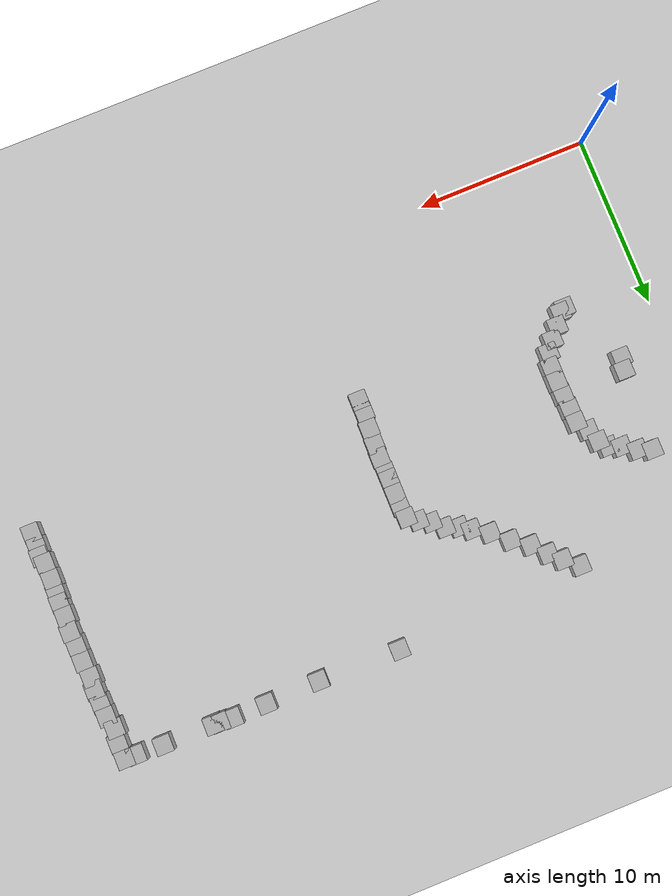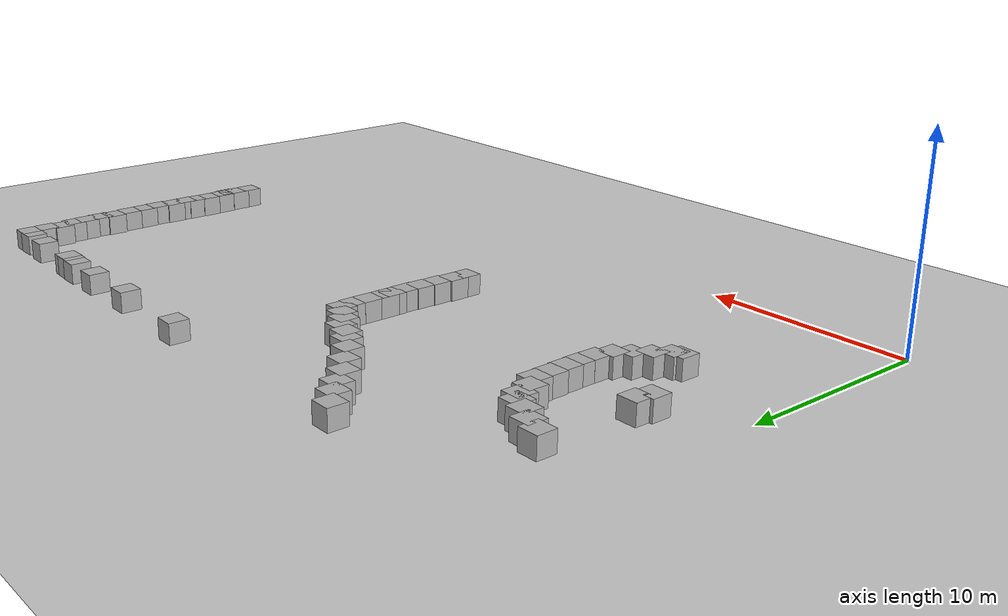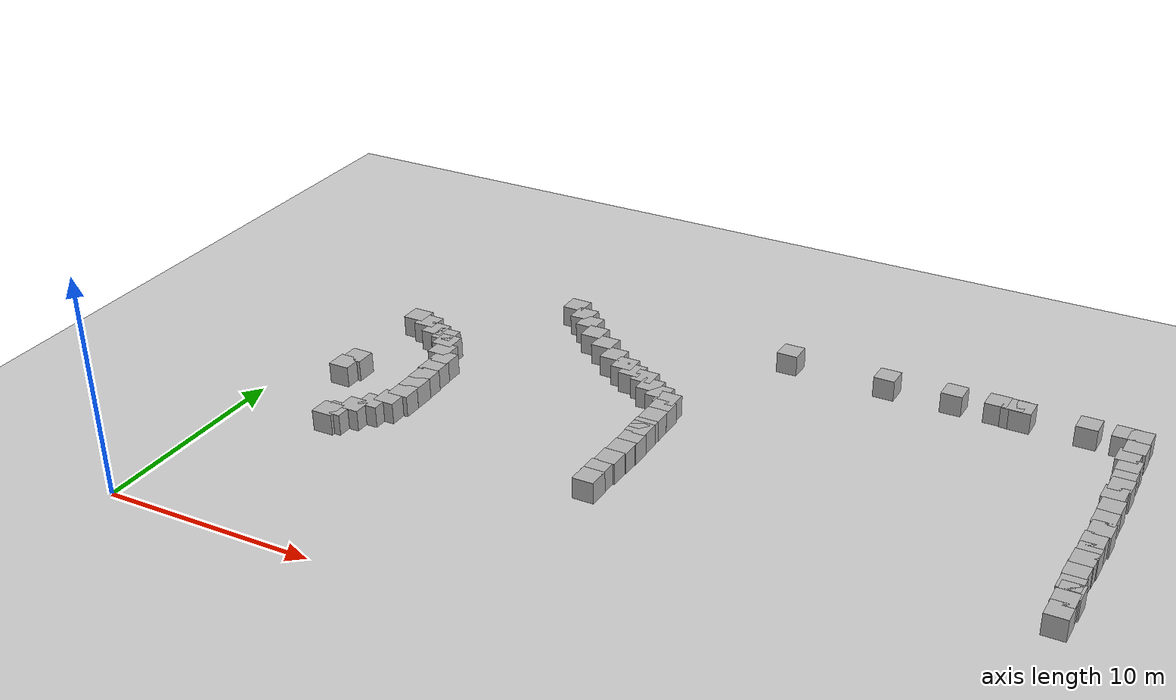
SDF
<sdf version="1.10">
 <world name="empty">
  <model name="ground_plane">
   <static>true</static>
   <link name="link">
    <collision name="collision">
     <geometry><plane><normal>0 0 1</normal><size>100 100</size></plane></geometry>
    </collision>
    <visual name="visual">
     <geometry><plane><normal>0 0 1</normal><size>100 100</size></plane></geometry>
     <material>
      <ambient>0.800000012 0.800000012 0.800000012 1</ambient>
      <diffuse>0.800000012 0.800000012 0.800000012 1</diffuse>
      <specular>0.800000012 0.800000012 0.800000012 1</specular>
     </material>
    </visual>
    <inertial>
     <mass>1</mass>
     <inertia><ixx>1</ixx><ixy>0</ixy><ixz>0</ixz><iyy>1</iyy><iyz>0</iyz><izz>1</izz></inertia>
    </inertial>
   </link>
  </model>
  <model name="box_7_46">
   <pose>3.0677320208364174 13.160288461322423 0.5 0 0 0</pose>
   <link name="box_link">
    <inertial>
     <inertia><ixx>0.16666</ixx><ixy>0</ixy><ixz>0</ixz><iyy>0.16666</iyy><iyz>0</iyz><izz>0.16666</izz></inertia>
     <mass>1</mass>
    </inertial>
    <collision name="box_collision"><geometry><box><size>1 1 1</size></box></geometry></collision>
    <visual name="box_visual">
     <geometry><box><size>1 1 1</size></box></geometry>
     <material>
      <ambient>0.300000012 0.300000012 0.300000012 1</ambient>
      <diffuse>0.699999988 0.699999988 0.699999988 1</diffuse>
      <specular>1 1 1 1</specular>
     </material>
    </visual>
   </link>
   <static>false</static>
  </model>
  <model name="box_7_47">
   <pose>2.9097645457033714 12.430221554725588 0.5 0 0 0</pose>
   <link name="box_link">
    <inertial>
     <inertia><ixx>0.16666</ixx><ixy>0</ixy><ixz>0</ixz><iyy>0.16666</iyy><iyz>0</iyz><izz>0.16666</izz></inertia>
     <mass>1</mass>
    </inertial>
    <collision name="box_collision"><geometry><box><size>1 1 1</size></box></geometry></collision>
    <visual name="box_visual">
     <geometry><box><size>1 1 1</size></box></geometry>
     <material>
      <ambient>0.300000012 0.300000012 0.300000012 1</ambient>
      <diffuse>0.699999988 0.699999988 0.699999988 1</diffuse>
      <specular>1 1 1 1</specular>
     </material>
    </visual>
   </link>
   <static>false</static>
  </model>
  <model name="box_7_78">
   <pose>3.3370179399446265 17.899108722069567 0.5 0 0 0</pose>
   <link name="box_link">
    <inertial>
     <inertia><ixx>0.16666</ixx><ixy>0</ixy><ixz>0</ixz><iyy>0.16666</iyy><iyz>0</iyz><izz>0.16666</izz></inertia>
     <mass>1</mass>
    </inertial>
    <collision name="box_collision"><geometry><box><size>1 1 1</size></box></geometry></collision>
    <visual name="box_visual">
     <geometry><box><size>1 1 1</size></box></geometry>
     <material>
      <ambient>0.300000012 0.300000012 0.300000012 1</ambient>
      <diffuse>0.699999988 0.699999988 0.699999988 1</diffuse>
      <specular>1 1 1 1</specular>
     </material>
    </visual>
   </link>
   <static>false</static>
  </model>
  <model name="box_7_79">
   <pose>4.1255406590852468 17.592971812238531 0.5 0 0 0</pose>
   <link name="box_link">
    <inertial>
     <inertia><ixx>0.16666</ixx><ixy>0</ixy><ixz>0</ixz><iyy>0.16666</iyy><iyz>0</iyz><izz>0.16666</izz></inertia>
     <mass>1</mass>
    </inertial>
    <collision name="box_collision"><geometry><box><size>1 1 1</size></box></geometry></collision>
    <visual name="box_visual">
     <geometry><box><size>1 1 1</size></box></geometry>
     <material>
      <ambient>0.300000012 0.300000012 0.300000012 1</ambient>
      <diffuse>0.699999988 0.699999988 0.699999988 1</diffuse>
      <specular>1 1 1 1</specular>
     </material>
    </visual>
   </link>
   <static>false</static>
  </model>
  <model name="box_7_80">
   <pose>4.8901070968237415 17.086062362435086 0.5 0 0 0</pose>
   <link name="box_link">
    <inertial>
     <inertia><ixx>0.16666</ixx><ixy>0</ixy><ixz>0</ixz><iyy>0.16666</iyy><iyz>0</iyz><izz>0.16666</izz></inertia>
     <mass>1</mass>
    </inertial>
    <collision name="box_collision"><geometry><box><size>1 1 1</size></box></geometry></collision>
    <visual name="box_visual">
     <geometry><box><size>1 1 1</size></box></geometry>
     <material>
      <ambient>0.300000012 0.300000012 0.300000012 1</ambient>
      <diffuse>0.699999988 0.699999988 0.699999988 1</diffuse>
      <specular>1 1 1 1</specular>
     </material>
    </visual>
   </link>
   <static>false</static>
  </model>
  <model name="box_7_81">
   <pose>5.5930437818151875 16.806907180822982 0.5 0 0 0</pose>
   <link name="box_link">
    <inertial>
     <inertia><ixx>0.16666</ixx><ixy>0</ixy><ixz>0</ixz><iyy>0.16666</iyy><iyz>0</iyz><izz>0.16666</izz></inertia>
     <mass>1</mass>
    </inertial>
    <collision name="box_collision"><geometry><box><size>1 1 1</size></box></geometry></collision>
    <visual name="box_visual">
     <geometry><box><size>1 1 1</size></box></geometry>
     <material>
      <ambient>0.300000012 0.300000012 0.300000012 1</ambient>
      <diffuse>0.699999988 0.699999988 0.699999988 1</diffuse>
      <specular>1 1 1 1</specular>
     </material>
    </visual>
   </link>
   <static>false</static>
  </model>
  <model name="box_7_82">
   <pose>5.9852228596454342 16.321524397538653 0.5 0 0 0</pose>
   <link name="box_link">
    <inertial>
     <inertia><ixx>0.16666</ixx><ixy>0</ixy><ixz>0</ixz><iyy>0.16666</iyy><iyz>0</iyz><izz>0.16666</izz></inertia>
     <mass>1</mass>
    </inertial>
    <collision name="box_collision"><geometry><box><size>1 1 1</size></box></geometry></collision>
    <visual name="box_visual">
     <geometry><box><size>1 1 1</size></box></geometry>
     <material>
      <ambient>0.300000012 0.300000012 0.300000012 1</ambient>
      <diffuse>0.699999988 0.699999988 0.699999988 1</diffuse>
      <specular>1 1 1 1</specular>
     </material>
    </visual>
   </link>
   <static>false</static>
  </model>
  <model name="box_7_83">
   <pose>6.2708436942567625 15.520516913768013 0.5 0 0 0</pose>
   <link name="box_link">
    <inertial>
     <inertia><ixx>0.16666</ixx><ixy>0</ixy><ixz>0</ixz><iyy>0.16666</iyy><iyz>0</iyz><izz>0.16666</izz></inertia>
     <mass>1</mass>
    </inertial>
    <collision name="box_collision"><geometry><box><size>1 1 1</size></box></geometry></collision>
    <visual name="box_visual">
     <geometry><box><size>1 1 1</size></box></geometry>
     <material>
      <ambient>0.300000012 0.300000012 0.300000012 1</ambient>
      <diffuse>0.699999988 0.699999988 0.699999988 1</diffuse>
      <specular>1 1 1 1</specular>
     </material>
    </visual>
   </link>
   <static>false</static>
  </model>
  <model name="box_7_84">
   <pose>6.728550969445779 14.859442429251848 0.5 0 0 0</pose>
   <link name="box_link">
    <inertial>
     <inertia><ixx>0.16666</ixx><ixy>0</ixy><ixz>0</ixz><iyy>0.16666</iyy><iyz>0</iyz><izz>0.16666</izz></inertia>
     <mass>1</mass>
    </inertial>
    <collision name="box_collision"><geometry><box><size>1 1 1</size></box></geometry></collision>
    <visual name="box_visual">
     <geometry><box><size>1 1 1</size></box></geometry>
     <material>
      <ambient>0.300000012 0.300000012 0.300000012 1</ambient>
      <diffuse>0.699999988 0.699999988 0.699999988 1</diffuse>
      <specular>1 1 1 1</specular>
     </material>
    </visual>
   </link>
   <static>false</static>
  </model>
  <model name="box_7_85">
   <pose>6.7566246475811251 13.987712866597468 0.5 0 0 0</pose>
   <link name="box_link">
    <inertial>
     <inertia><ixx>0.16666</ixx><ixy>0</ixy><ixz>0</ixz><iyy>0.16666</iyy><iyz>0</iyz><izz>0.16666</izz></inertia>
     <mass>1</mass>
    </inertial>
    <collision name="box_collision"><geometry><box><size>1 1 1</size></box></geometry></collision>
    <visual name="box_visual">
     <geometry><box><size>1 1 1</size></box></geometry>
     <material>
      <ambient>0.300000012 0.300000012 0.300000012 1</ambient>
      <diffuse>0.699999988 0.699999988 0.699999988 1</diffuse>
      <specular>1 1 1 1</specular>
     </material>
    </visual>
   </link>
   <static>false</static>
  </model>
  <model name="box_7_86">
   <pose>6.8127944043312958 13.116238845011692 0.5 0 0 0</pose>
   <link name="box_link">
    <inertial>
     <inertia><ixx>0.16666</ixx><ixy>0</ixy><ixz>0</ixz><iyy>0.16666</iyy><iyz>0</iyz><izz>0.16666</izz></inertia>
     <mass>1</mass>
    </inertial>
    <collision name="box_collision"><geometry><box><size>1 1 1</size></box></geometry></collision>
    <visual name="box_visual">
     <geometry><box><size>1 1 1</size></box></geometry>
     <material>
      <ambient>0.300000012 0.300000012 0.300000012 1</ambient>
      <diffuse>0.699999988 0.699999988 0.699999988 1</diffuse>
      <specular>1 1 1 1</specular>
     </material>
    </visual>
   </link>
   <static>false</static>
  </model>
  <model name="box_7_87">
   <pose>6.8409218960835698 12.295411732181719 0.5 0 0 0</pose>
   <link name="box_link">
    <inertial>
     <inertia><ixx>0.16666</ixx><ixy>0</ixy><ixz>0</ixz><iyy>0.16666</iyy><iyz>0</iyz><izz>0.16666</izz></inertia>
     <mass>1</mass>
    </inertial>
    <collision name="box_collision"><geometry><box><size>1 1 1</size></box></geometry></collision>
    <visual name="box_visual">
     <geometry><box><size>1 1 1</size></box></geometry>
     <material>
      <ambient>0.300000012 0.300000012 0.300000012 1</ambient>
      <diffuse>0.699999988 0.699999988 0.699999988 1</diffuse>
      <specular>1 1 1 1</specular>
     </material>
    </visual>
   </link>
   <static>false</static>
  </model>
  <model name="box_7_88">
   <pose>6.8384007547116159 11.441760595426191 0.5 0 0 0</pose>
   <link name="box_link">
    <inertial>
     <inertia><ixx>0.16666</ixx><ixy>0</ixy><ixz>0</ixz><iyy>0.16666</iyy><iyz>0</iyz><izz>0.16666</izz></inertia>
     <mass>1</mass>
    </inertial>
    <collision name="box_collision"><geometry><box><size>1 1 1</size></box></geometry></collision>
    <visual name="box_visual">
     <geometry><box><size>1 1 1</size></box></geometry>
     <material>
      <ambient>0.300000012 0.300000012 0.300000012 1</ambient>
      <diffuse>0.699999988 0.699999988 0.699999988 1</diffuse>
      <specular>1 1 1 1</specular>
     </material>
    </visual>
   </link>
   <static>false</static>
  </model>
  <model name="box_7_89">
   <pose>6.6276116451005791 10.64191066897904 0.5 0 0 0</pose>
   <link name="box_link">
    <inertial>
     <inertia><ixx>0.16666</ixx><ixy>0</ixy><ixz>0</ixz><iyy>0.16666</iyy><iyz>0</iyz><izz>0.16666</izz></inertia>
     <mass>1</mass>
    </inertial>
    <collision name="box_collision"><geometry><box><size>1 1 1</size></box></geometry></collision>
    <visual name="box_visual">
     <geometry><box><size>1 1 1</size></box></geometry>
     <material>
      <ambient>0.300000012 0.300000012 0.300000012 1</ambient>
      <diffuse>0.699999988 0.699999988 0.699999988 1</diffuse>
      <specular>1 1 1 1</specular>
     </material>
    </visual>
   </link>
   <static>false</static>
  </model>
  <model name="box_7_90">
   <pose>6.14560641621547 10.042846117557437 0.5 0 0 0</pose>
   <link name="box_link">
    <inertial>
     <inertia><ixx>0.16666</ixx><ixy>0</ixy><ixz>0</ixz><iyy>0.16666</iyy><iyz>0</iyz><izz>0.16666</izz></inertia>
     <mass>1</mass>
    </inertial>
    <collision name="box_collision"><geometry><box><size>1 1 1</size></box></geometry></collision>
    <visual name="box_visual">
     <geometry><box><size>1 1 1</size></box></geometry>
     <material>
      <ambient>0.300000012 0.300000012 0.300000012 1</ambient>
      <diffuse>0.699999988 0.699999988 0.699999988 1</diffuse>
      <specular>1 1 1 1</specular>
     </material>
    </visual>
   </link>
   <static>false</static>
  </model>
  <model name="box_7_91">
   <pose>5.6048762038839808 9.4137024234679814 0.5 0 0 0</pose>
   <link name="box_link">
    <inertial>
     <inertia><ixx>0.16666</ixx><ixy>0</ixy><ixz>0</ixz><iyy>0.16666</iyy><iyz>0</iyz><izz>0.16666</izz></inertia>
     <mass>1</mass>
    </inertial>
    <collision name="box_collision"><geometry><box><size>1 1 1</size></box></geometry></collision>
    <visual name="box_visual">
     <geometry><box><size>1 1 1</size></box></geometry>
     <material>
      <ambient>0.300000012 0.300000012 0.300000012 1</ambient>
      <diffuse>0.699999988 0.699999988 0.699999988 1</diffuse>
      <specular>1 1 1 1</specular>
     </material>
    </visual>
   </link>
   <static>false</static>
  </model>
  <model name="box_7_92">
   <pose>5.1192223381522863 8.7524287510906085 0.5 0 0 0</pose>
   <link name="box_link">
    <inertial>
     <inertia><ixx>0.16666</ixx><ixy>0</ixy><ixz>0</ixz><iyy>0.16666</iyy><iyz>0</iyz><izz>0.16666</izz></inertia>
     <mass>1</mass>
    </inertial>
    <collision name="box_collision"><geometry><box><size>1 1 1</size></box></geometry></collision>
    <visual name="box_visual">
     <geometry><box><size>1 1 1</size></box></geometry>
     <material>
      <ambient>0.300000012 0.300000012 0.300000012 1</ambient>
      <diffuse>0.699999988 0.699999988 0.699999988 1</diffuse>
      <specular>1 1 1 1</specular>
     </material>
    </visual>
   </link>
   <static>false</static>
  </model>
  <model name="box_7_93">
   <pose>4.7992040925574493 8.5973107339794339 0.5 0 0 0</pose>
   <link name="box_link">
    <inertial>
     <inertia><ixx>0.16666</ixx><ixy>0</ixy><ixz>0</ixz><iyy>0.16666</iyy><iyz>0</iyz><izz>0.16666</izz></inertia>
     <mass>1</mass>
    </inertial>
    <collision name="box_collision"><geometry><box><size>1 1 1</size></box></geometry></collision>
    <visual name="box_visual">
     <geometry><box><size>1 1 1</size></box></geometry>
     <material>
      <ambient>0.300000012 0.300000012 0.300000012 1</ambient>
      <diffuse>0.699999988 0.699999988 0.699999988 1</diffuse>
      <specular>1 1 1 1</specular>
     </material>
    </visual>
   </link>
   <static>false</static>
  </model>
  <model name="box_7_307">
   <pose>37.45680864665556 9.1510525211364016 0.5 0 0 0</pose>
   <link name="box_link">
    <inertial>
     <inertia><ixx>0.16666</ixx><ixy>0</ixy><ixz>0</ixz><iyy>0.16666</iyy><iyz>0</iyz><izz>0.16666</izz></inertia>
     <mass>1</mass>
    </inertial>
    <collision name="box_collision"><geometry><box><size>1 1 1</size></box></geometry></collision>
    <visual name="box_visual">
     <geometry><box><size>1 1 1</size></box></geometry>
     <material>
      <ambient>0.300000012 0.300000012 0.300000012 1</ambient>
      <diffuse>0.699999988 0.699999988 0.699999988 1</diffuse>
      <specular>1 1 1 1</specular>
     </material>
    </visual>
   </link>
   <static>false</static>
  </model>
  <model name="box_7_308">
   <pose>37.437525013627777 9.9459274344314839 0.5 0 0 0</pose>
   <link name="box_link">
    <inertial>
     <inertia><ixx>0.16666</ixx><ixy>0</ixy><ixz>0</ixz><iyy>0.16666</iyy><iyz>0</iyz><izz>0.16666</izz></inertia>
     <mass>1</mass>
    </inertial>
    <collision name="box_collision"><geometry><box><size>1 1 1</size></box></geometry></collision>
    <visual name="box_visual">
     <geometry><box><size>1 1 1</size></box></geometry>
     <material>
      <ambient>0.300000012 0.300000012 0.300000012 1</ambient>
      <diffuse>0.699999988 0.699999988 0.699999988 1</diffuse>
      <specular>1 1 1 1</specular>
     </material>
    </visual>
   </link>
   <static>false</static>
  </model>
  <model name="box_7_309">
   <pose>37.379364087096768 10.986560178712093 0.5 0 0 0</pose>
   <link name="box_link">
    <inertial>
     <inertia><ixx>0.16666</ixx><ixy>0</ixy><ixz>0</ixz><iyy>0.16666</iyy><iyz>0</iyz><izz>0.16666</izz></inertia>
     <mass>1</mass>
    </inertial>
    <collision name="box_collision"><geometry><box><size>1 1 1</size></box></geometry></collision>
    <visual name="box_visual">
     <geometry><box><size>1 1 1</size></box></geometry>
     <material>
      <ambient>0.300000012 0.300000012 0.300000012 1</ambient>
      <diffuse>0.699999988 0.699999988 0.699999988 1</diffuse>
      <specular>1 1 1 1</specular>
     </material>
    </visual>
   </link>
   <static>false</static>
  </model>
  <model name="box_7_310">
   <pose>37.35019409803737 11.94265353500643 0.5 0 0 0</pose>
   <link name="box_link">
    <inertial>
     <inertia><ixx>0.16666</ixx><ixy>0</ixy><ixz>0</ixz><iyy>0.16666</iyy><iyz>0</iyz><izz>0.16666</izz></inertia>
     <mass>1</mass>
    </inertial>
    <collision name="box_collision"><geometry><box><size>1 1 1</size></box></geometry></collision>
    <visual name="box_visual">
     <geometry><box><size>1 1 1</size></box></geometry>
     <material>
      <ambient>0.300000012 0.300000012 0.300000012 1</ambient>
      <diffuse>0.699999988 0.699999988 0.699999988 1</diffuse>
      <specular>1 1 1 1</specular>
     </material>
    </visual>
   </link>
   <static>false</static>
  </model>
  <model name="box_7_311">
   <pose>37.5029476107702 10.532556955067369 0.5 0 0 0</pose>
   <link name="box_link">
    <inertial>
     <inertia><ixx>0.16666</ixx><ixy>0</ixy><ixz>0</ixz><iyy>0.16666</iyy><iyz>0</iyz><izz>0.16666</izz></inertia>
     <mass>1</mass>
    </inertial>
    <collision name="box_collision"><geometry><box><size>1 1 1</size></box></geometry></collision>
    <visual name="box_visual">
     <geometry><box><size>1 1 1</size></box></geometry>
     <material>
      <ambient>0.300000012 0.300000012 0.300000012 1</ambient>
      <diffuse>0.699999988 0.699999988 0.699999988 1</diffuse>
      <specular>1 1 1 1</specular>
     </material>
    </visual>
   </link>
   <static>false</static>
  </model>
  <model name="box_7_312">
   <pose>37.372786724229321 12.812860889300671 0.5 0 0 0</pose>
   <link name="box_link">
    <inertial>
     <inertia><ixx>0.16666</ixx><ixy>0</ixy><ixz>0</ixz><iyy>0.16666</iyy><iyz>0</iyz><izz>0.16666</izz></inertia>
     <mass>1</mass>
    </inertial>
    <collision name="box_collision"><geometry><box><size>1 1 1</size></box></geometry></collision>
    <visual name="box_visual">
     <geometry><box><size>1 1 1</size></box></geometry>
     <material>
      <ambient>0.300000012 0.300000012 0.300000012 1</ambient>
      <diffuse>0.699999988 0.699999988 0.699999988 1</diffuse>
      <specular>1 1 1 1</specular>
     </material>
    </visual>
   </link>
   <static>false</static>
  </model>
  <model name="box_7_313">
   <pose>37.409255989809914 13.39058055304104 0.5 0 0 0</pose>
   <link name="box_link">
    <inertial>
     <inertia><ixx>0.16666</ixx><ixy>0</ixy><ixz>0</ixz><iyy>0.16666</iyy><iyz>0</iyz><izz>0.16666</izz></inertia>
     <mass>1</mass>
    </inertial>
    <collision name="box_collision"><geometry><box><size>1 1 1</size></box></geometry></collision>
    <visual name="box_visual">
     <geometry><box><size>1 1 1</size></box></geometry>
     <material>
      <ambient>0.300000012 0.300000012 0.300000012 1</ambient>
      <diffuse>0.699999988 0.699999988 0.699999988 1</diffuse>
      <specular>1 1 1 1</specular>
     </material>
    </visual>
   </link>
   <static>false</static>
  </model>
  <model name="box_7_314">
   <pose>37.389153873423389 14.176190057123621 0.5 0 0 0</pose>
   <link name="box_link">
    <inertial>
     <inertia><ixx>0.16666</ixx><ixy>0</ixy><ixz>0</ixz><iyy>0.16666</iyy><iyz>0</iyz><izz>0.16666</izz></inertia>
     <mass>1</mass>
    </inertial>
    <collision name="box_collision"><geometry><box><size>1 1 1</size></box></geometry></collision>
    <visual name="box_visual">
     <geometry><box><size>1 1 1</size></box></geometry>
     <material>
      <ambient>0.300000012 0.300000012 0.300000012 1</ambient>
      <diffuse>0.699999988 0.699999988 0.699999988 1</diffuse>
      <specular>1 1 1 1</specular>
     </material>
    </visual>
   </link>
   <static>false</static>
  </model>
  <model name="box_7_315">
   <pose>37.45693319252716 15.08307558189752 0.5 0 0 0</pose>
   <link name="box_link">
    <inertial>
     <inertia><ixx>0.16666</ixx><ixy>0</ixy><ixz>0</ixz><iyy>0.16666</iyy><iyz>0</iyz><izz>0.16666</izz></inertia>
     <mass>1</mass>
    </inertial>
    <collision name="box_collision"><geometry><box><size>1 1 1</size></box></geometry></collision>
    <visual name="box_visual">
     <geometry><box><size>1 1 1</size></box></geometry>
     <material>
      <ambient>0.300000012 0.300000012 0.300000012 1</ambient>
      <diffuse>0.699999988 0.699999988 0.699999988 1</diffuse>
      <specular>1 1 1 1</specular>
     </material>
    </visual>
   </link>
   <static>false</static>
  </model>
  <model name="box_7_316">
   <pose>37.39644856556891 15.902960391572941 0.5 0 0 0</pose>
   <link name="box_link">
    <inertial>
     <inertia><ixx>0.16666</ixx><ixy>0</ixy><ixz>0</ixz><iyy>0.16666</iyy><iyz>0</iyz><izz>0.16666</izz></inertia>
     <mass>1</mass>
    </inertial>
    <collision name="box_collision"><geometry><box><size>1 1 1</size></box></geometry></collision>
    <visual name="box_visual">
     <geometry><box><size>1 1 1</size></box></geometry>
     <material>
      <ambient>0.300000012 0.300000012 0.300000012 1</ambient>
      <diffuse>0.699999988 0.699999988 0.699999988 1</diffuse>
      <specular>1 1 1 1</specular>
     </material>
    </visual>
   </link>
   <static>false</static>
  </model>
  <model name="box_7_317">
   <pose>37.381337298064665 16.877999084050604 0.5 0 0 0</pose>
   <link name="box_link">
    <inertial>
     <inertia><ixx>0.16666</ixx><ixy>0</ixy><ixz>0</ixz><iyy>0.16666</iyy><iyz>0</iyz><izz>0.16666</izz></inertia>
     <mass>1</mass>
    </inertial>
    <collision name="box_collision"><geometry><box><size>1 1 1</size></box></geometry></collision>
    <visual name="box_visual">
     <geometry><box><size>1 1 1</size></box></geometry>
     <material>
      <ambient>0.300000012 0.300000012 0.300000012 1</ambient>
      <diffuse>0.699999988 0.699999988 0.699999988 1</diffuse>
      <specular>1 1 1 1</specular>
     </material>
    </visual>
   </link>
   <static>false</static>
  </model>
  <model name="box_7_318">
   <pose>37.270966010248529 17.85435456151815 0.5 0 0 0</pose>
   <link name="box_link">
    <inertial>
     <inertia><ixx>0.16666</ixx><ixy>0</ixy><ixz>0</ixz><iyy>0.16666</iyy><iyz>0</iyz><izz>0.16666</izz></inertia>
     <mass>1</mass>
    </inertial>
    <collision name="box_collision"><geometry><box><size>1 1 1</size></box></geometry></collision>
    <visual name="box_visual">
     <geometry><box><size>1 1 1</size></box></geometry>
     <material>
      <ambient>0.300000012 0.300000012 0.300000012 1</ambient>
      <diffuse>0.699999988 0.699999988 0.699999988 1</diffuse>
      <specular>1 1 1 1</specular>
     </material>
    </visual>
   </link>
   <static>false</static>
  </model>
  <model name="box_7_319">
   <pose>37.348105900892605 18.586559697341261 0.5 0 0 0</pose>
   <link name="box_link">
    <inertial>
     <inertia><ixx>0.16666</ixx><ixy>0</ixy><ixz>0</ixz><iyy>0.16666</iyy><iyz>0</iyz><izz>0.16666</izz></inertia>
     <mass>1</mass>
    </inertial>
    <collision name="box_collision"><geometry><box><size>1 1 1</size></box></geometry></collision>
    <visual name="box_visual">
     <geometry><box><size>1 1 1</size></box></geometry>
     <material>
      <ambient>0.300000012 0.300000012 0.300000012 1</ambient>
      <diffuse>0.699999988 0.699999988 0.699999988 1</diffuse>
      <specular>1 1 1 1</specular>
     </material>
    </visual>
   </link>
   <static>false</static>
  </model>
  <model name="box_7_320">
   <pose>37.291974564923969 19.433795861117542 0.5 0 0 0</pose>
   <link name="box_link">
    <inertial>
     <inertia><ixx>0.16666</ixx><ixy>0</ixy><ixz>0</ixz><iyy>0.16666</iyy><iyz>0</iyz><izz>0.16666</izz></inertia>
     <mass>1</mass>
    </inertial>
    <collision name="box_collision"><geometry><box><size>1 1 1</size></box></geometry></collision>
    <visual name="box_visual">
     <geometry><box><size>1 1 1</size></box></geometry>
     <material>
      <ambient>0.300000012 0.300000012 0.300000012 1</ambient>
      <diffuse>0.699999988 0.699999988 0.699999988 1</diffuse>
      <specular>1 1 1 1</specular>
     </material>
    </visual>
   </link>
   <static>false</static>
  </model>
  <model name="box_7_321">
   <pose>37.258338235255145 20.200191275361107 0.5 0 0 0</pose>
   <link name="box_link">
    <inertial>
     <inertia><ixx>0.16666</ixx><ixy>0</ixy><ixz>0</ixz><iyy>0.16666</iyy><iyz>0</iyz><izz>0.16666</izz></inertia>
     <mass>1</mass>
    </inertial>
    <collision name="box_collision"><geometry><box><size>1 1 1</size></box></geometry></collision>
    <visual name="box_visual">
     <geometry><box><size>1 1 1</size></box></geometry>
     <material>
      <ambient>0.300000012 0.300000012 0.300000012 1</ambient>
      <diffuse>0.699999988 0.699999988 0.699999988 1</diffuse>
      <specular>1 1 1 1</specular>
     </material>
    </visual>
   </link>
   <static>false</static>
  </model>
  <model name="box_7_340">
   <pose>9.6296582401418966 22.379526020574886 0.5 0 0 0</pose>
   <link name="box_link">
    <inertial>
     <inertia><ixx>0.16666</ixx><ixy>0</ixy><ixz>0</ixz><iyy>0.16666</iyy><iyz>0</iyz><izz>0.16666</izz></inertia>
     <mass>1</mass>
    </inertial>
    <collision name="box_collision"><geometry><box><size>1 1 1</size></box></geometry></collision>
    <visual name="box_visual">
     <geometry><box><size>1 1 1</size></box></geometry>
     <material>
      <ambient>0.300000012 0.300000012 0.300000012 1</ambient>
      <diffuse>0.699999988 0.699999988 0.699999988 1</diffuse>
      <specular>1 1 1 1</specular>
     </material>
    </visual>
   </link>
   <static>false</static>
  </model>
  <model name="box_7_342">
   <pose>10.419036784703039 21.706317208741083 0.5 0 0 0</pose>
   <link name="box_link">
    <inertial>
     <inertia><ixx>0.16666</ixx><ixy>0</ixy><ixz>0</ixz><iyy>0.16666</iyy><iyz>0</iyz><izz>0.16666</izz></inertia>
     <mass>1</mass>
    </inertial>
    <collision name="box_collision"><geometry><box><size>1 1 1</size></box></geometry></collision>
    <visual name="box_visual">
     <geometry><box><size>1 1 1</size></box></geometry>
     <material>
      <ambient>0.300000012 0.300000012 0.300000012 1</ambient>
      <diffuse>0.699999988 0.699999988 0.699999988 1</diffuse>
      <specular>1 1 1 1</specular>
     </material>
    </visual>
   </link>
   <static>false</static>
  </model>
  <model name="box_7_344">
   <pose>11.059384243810497 21.094438699251505 0.5 0 0 0</pose>
   <link name="box_link">
    <inertial>
     <inertia><ixx>0.16666</ixx><ixy>0</ixy><ixz>0</ixz><iyy>0.16666</iyy><iyz>0</iyz><izz>0.16666</izz></inertia>
     <mass>1</mass>
    </inertial>
    <collision name="box_collision"><geometry><box><size>1 1 1</size></box></geometry></collision>
    <visual name="box_visual">
     <geometry><box><size>1 1 1</size></box></geometry>
     <material>
      <ambient>0.300000012 0.300000012 0.300000012 1</ambient>
      <diffuse>0.699999988 0.699999988 0.699999988 1</diffuse>
      <specular>1 1 1 1</specular>
     </material>
    </visual>
   </link>
   <static>false</static>
  </model>
  <model name="box_7_346">
   <pose>11.773441391644857 20.292504219794736 0.5 0 0 0</pose>
   <link name="box_link">
    <inertial>
     <inertia><ixx>0.16666</ixx><ixy>0</ixy><ixz>0</ixz><iyy>0.16666</iyy><iyz>0</iyz><izz>0.16666</izz></inertia>
     <mass>1</mass>
    </inertial>
    <collision name="box_collision"><geometry><box><size>1 1 1</size></box></geometry></collision>
    <visual name="box_visual">
     <geometry><box><size>1 1 1</size></box></geometry>
     <material>
      <ambient>0.300000012 0.300000012 0.300000012 1</ambient>
      <diffuse>0.699999988 0.699999988 0.699999988 1</diffuse>
      <specular>1 1 1 1</specular>
     </material>
    </visual>
   </link>
   <static>false</static>
  </model>
  <model name="box_7_348">
   <pose>37.061699127722747 20.967878365933736 0.5 0 0 0</pose>
   <link name="box_link">
    <inertial>
     <inertia><ixx>0.16666</ixx><ixy>0</ixy><ixz>0</ixz><iyy>0.16666</iyy><iyz>0</iyz><izz>0.16666</izz></inertia>
     <mass>1</mass>
    </inertial>
    <collision name="box_collision"><geometry><box><size>1 1 1</size></box></geometry></collision>
    <visual name="box_visual">
     <geometry><box><size>1 1 1</size></box></geometry>
     <material>
      <ambient>0.300000012 0.300000012 0.300000012 1</ambient>
      <diffuse>0.699999988 0.699999988 0.699999988 1</diffuse>
      <specular>1 1 1 1</specular>
     </material>
    </visual>
   </link>
   <static>false</static>
  </model>
  <model name="box_7_349">
   <pose>37.187337383648014 21.765564202109292 0.5 0 0 0</pose>
   <link name="box_link">
    <inertial>
     <inertia><ixx>0.16666</ixx><ixy>0</ixy><ixz>0</ixz><iyy>0.16666</iyy><iyz>0</iyz><izz>0.16666</izz></inertia>
     <mass>1</mass>
    </inertial>
    <collision name="box_collision"><geometry><box><size>1 1 1</size></box></geometry></collision>
    <visual name="box_visual">
     <geometry><box><size>1 1 1</size></box></geometry>
     <material>
      <ambient>0.300000012 0.300000012 0.300000012 1</ambient>
      <diffuse>0.699999988 0.699999988 0.699999988 1</diffuse>
      <specular>1 1 1 1</specular>
     </material>
    </visual>
   </link>
   <static>false</static>
  </model>
  <model name="box_7_350">
   <pose>37.148603493831054 22.732330262251278 0.5 0 0 0</pose>
   <link name="box_link">
    <inertial>
     <inertia><ixx>0.16666</ixx><ixy>0</ixy><ixz>0</ixz><iyy>0.16666</iyy><iyz>0</iyz><izz>0.16666</izz></inertia>
     <mass>1</mass>
    </inertial>
    <collision name="box_collision"><geometry><box><size>1 1 1</size></box></geometry></collision>
    <visual name="box_visual">
     <geometry><box><size>1 1 1</size></box></geometry>
     <material>
      <ambient>0.300000012 0.300000012 0.300000012 1</ambient>
      <diffuse>0.699999988 0.699999988 0.699999988 1</diffuse>
      <specular>1 1 1 1</specular>
     </material>
    </visual>
   </link>
   <static>false</static>
  </model>
  <model name="box_7_351">
   <pose>36.47517760963494 22.754972371450705 0.5 0 0 0</pose>
   <link name="box_link">
    <inertial>
     <inertia><ixx>0.16666</ixx><ixy>0</ixy><ixz>0</ixz><iyy>0.16666</iyy><iyz>0</iyz><izz>0.16666</izz></inertia>
     <mass>1</mass>
    </inertial>
    <collision name="box_collision"><geometry><box><size>1 1 1</size></box></geometry></collision>
    <visual name="box_visual">
     <geometry><box><size>1 1 1</size></box></geometry>
     <material>
      <ambient>0.300000012 0.300000012 0.300000012 1</ambient>
      <diffuse>0.699999988 0.699999988 0.699999988 1</diffuse>
      <specular>1 1 1 1</specular>
     </material>
    </visual>
   </link>
   <static>false</static>
  </model>
  <model name="box_7_353">
   <pose>34.894002876487399 22.818059061357992 0.5 0 0 0</pose>
   <link name="box_link">
    <inertial>
     <inertia><ixx>0.16666</ixx><ixy>0</ixy><ixz>0</ixz><iyy>0.16666</iyy><iyz>0</iyz><izz>0.16666</izz></inertia>
     <mass>1</mass>
    </inertial>
    <collision name="box_collision"><geometry><box><size>1 1 1</size></box></geometry></collision>
    <visual name="box_visual">
     <geometry><box><size>1 1 1</size></box></geometry>
     <material>
      <ambient>0.300000012 0.300000012 0.300000012 1</ambient>
      <diffuse>0.699999988 0.699999988 0.699999988 1</diffuse>
      <specular>1 1 1 1</specular>
     </material>
    </visual>
   </link>
   <static>false</static>
  </model>
  <model name="box_7_357">
   <pose>31.920128928096837 22.831040190495731 0.5 0 0 0</pose>
   <link name="box_link">
    <inertial>
     <inertia><ixx>0.16666</ixx><ixy>0</ixy><ixz>0</ixz><iyy>0.16666</iyy><iyz>0</iyz><izz>0.16666</izz></inertia>
     <mass>1</mass>
    </inertial>
    <collision name="box_collision"><geometry><box><size>1 1 1</size></box></geometry></collision>
    <visual name="box_visual">
     <geometry><box><size>1 1 1</size></box></geometry>
     <material>
      <ambient>0.300000012 0.300000012 0.300000012 1</ambient>
      <diffuse>0.699999988 0.699999988 0.699999988 1</diffuse>
      <specular>1 1 1 1</specular>
     </material>
    </visual>
   </link>
   <static>false</static>
  </model>
  <model name="box_7_358">
   <pose>31.535530529682759 22.859324580671025 0.5 0 0 0</pose>
   <link name="box_link">
    <inertial>
     <inertia><ixx>0.16666</ixx><ixy>0</ixy><ixz>0</ixz><iyy>0.16666</iyy><iyz>0</iyz><izz>0.16666</izz></inertia>
     <mass>1</mass>
    </inertial>
    <collision name="box_collision"><geometry><box><size>1 1 1</size></box></geometry></collision>
    <visual name="box_visual">
     <geometry><box><size>1 1 1</size></box></geometry>
     <material>
      <ambient>0.300000012 0.300000012 0.300000012 1</ambient>
      <diffuse>0.699999988 0.699999988 0.699999988 1</diffuse>
      <specular>1 1 1 1</specular>
     </material>
    </visual>
   </link>
   <static>false</static>
  </model>
  <model name="box_7_359">
   <pose>30.777661760562317 22.898911301565775 0.5 0 0 0</pose>
   <link name="box_link">
    <inertial>
     <inertia><ixx>0.16666</ixx><ixy>0</ixy><ixz>0</ixz><iyy>0.16666</iyy><iyz>0</iyz><izz>0.16666</izz></inertia>
     <mass>1</mass>
    </inertial>
    <collision name="box_collision"><geometry><box><size>1 1 1</size></box></geometry></collision>
    <visual name="box_visual">
     <geometry><box><size>1 1 1</size></box></geometry>
     <material>
      <ambient>0.300000012 0.300000012 0.300000012 1</ambient>
      <diffuse>0.699999988 0.699999988 0.699999988 1</diffuse>
      <specular>1 1 1 1</specular>
     </material>
    </visual>
   </link>
   <static>false</static>
  </model>
  <model name="box_7_361">
   <pose>28.76985723185846 22.87628843817906 0.5 0 0 0</pose>
   <link name="box_link">
    <inertial>
     <inertia><ixx>0.16666</ixx><ixy>0</ixy><ixz>0</ixz><iyy>0.16666</iyy><iyz>0</iyz><izz>0.16666</izz></inertia>
     <mass>1</mass>
    </inertial>
    <collision name="box_collision"><geometry><box><size>1 1 1</size></box></geometry></collision>
    <visual name="box_visual">
     <geometry><box><size>1 1 1</size></box></geometry>
     <material>
      <ambient>0.300000012 0.300000012 0.300000012 1</ambient>
      <diffuse>0.699999988 0.699999988 0.699999988 1</diffuse>
      <specular>1 1 1 1</specular>
     </material>
    </visual>
   </link>
   <static>false</static>
  </model>
  <model name="box_7_366">
   <pose>25.602629003933899 22.802761294287034 0.5 0 0 0</pose>
   <link name="box_link">
    <inertial>
     <inertia><ixx>0.16666</ixx><ixy>0</ixy><ixz>0</ixz><iyy>0.16666</iyy><iyz>0</iyz><izz>0.16666</izz></inertia>
     <mass>1</mass>
    </inertial>
    <collision name="box_collision"><geometry><box><size>1 1 1</size></box></geometry></collision>
    <visual name="box_visual">
     <geometry><box><size>1 1 1</size></box></geometry>
     <material>
      <ambient>0.300000012 0.300000012 0.300000012 1</ambient>
      <diffuse>0.699999988 0.699999988 0.699999988 1</diffuse>
      <specular>1 1 1 1</specular>
     </material>
    </visual>
   </link>
   <static>false</static>
  </model>
  <model name="box_7_372">
   <pose>20.778669180448716 22.905391185540438 0.5 0 0 0</pose>
   <link name="box_link">
    <inertial>
     <inertia><ixx>0.16666</ixx><ixy>0</ixy><ixz>0</ixz><iyy>0.16666</iyy><iyz>0</iyz><izz>0.16666</izz></inertia>
     <mass>1</mass>
    </inertial>
    <collision name="box_collision"><geometry><box><size>1 1 1</size></box></geometry></collision>
    <visual name="box_visual">
     <geometry><box><size>1 1 1</size></box></geometry>
     <material>
      <ambient>0.300000012 0.300000012 0.300000012 1</ambient>
      <diffuse>0.699999988 0.699999988 0.699999988 1</diffuse>
      <specular>1 1 1 1</specular>
     </material>
    </visual>
   </link>
   <static>false</static>
  </model>
  <model name="box_7_378">
   <pose>12.715912635292922 19.610126223125416 0.5 0 0 0</pose>
   <link name="box_link">
    <inertial>
     <inertia><ixx>0.16666</ixx><ixy>0</ixy><ixz>0</ixz><iyy>0.16666</iyy><iyz>0</iyz><izz>0.16666</izz></inertia>
     <mass>1</mass>
    </inertial>
    <collision name="box_collision"><geometry><box><size>1 1 1</size></box></geometry></collision>
    <visual name="box_visual">
     <geometry><box><size>1 1 1</size></box></geometry>
     <material>
      <ambient>0.300000012 0.300000012 0.300000012 1</ambient>
      <diffuse>0.699999988 0.699999988 0.699999988 1</diffuse>
      <specular>1 1 1 1</specular>
     </material>
    </visual>
   </link>
   <static>false</static>
  </model>
  <model name="box_7_379">
   <pose>13.629449885092754 18.790769507676526 0.5 0 0 0</pose>
   <link name="box_link">
    <inertial>
     <inertia><ixx>0.16666</ixx><ixy>0</ixy><ixz>0</ixz><iyy>0.16666</iyy><iyz>0</iyz><izz>0.16666</izz></inertia>
     <mass>1</mass>
    </inertial>
    <collision name="box_collision"><geometry><box><size>1 1 1</size></box></geometry></collision>
    <visual name="box_visual">
     <geometry><box><size>1 1 1</size></box></geometry>
     <material>
      <ambient>0.300000012 0.300000012 0.300000012 1</ambient>
      <diffuse>0.699999988 0.699999988 0.699999988 1</diffuse>
      <specular>1 1 1 1</specular>
     </material>
    </visual>
   </link>
   <static>false</static>
  </model>
  <model name="box_7_380">
   <pose>14.504809815722824 18.228215361735558 0.5 0 0 0</pose>
   <link name="box_link">
    <inertial>
     <inertia><ixx>0.16666</ixx><ixy>0</ixy><ixz>0</ixz><iyy>0.16666</iyy><iyz>0</iyz><izz>0.16666</izz></inertia>
     <mass>1</mass>
    </inertial>
    <collision name="box_collision"><geometry><box><size>1 1 1</size></box></geometry></collision>
    <visual name="box_visual">
     <geometry><box><size>1 1 1</size></box></geometry>
     <material>
      <ambient>0.300000012 0.300000012 0.300000012 1</ambient>
      <diffuse>0.699999988 0.699999988 0.699999988 1</diffuse>
      <specular>1 1 1 1</specular>
     </material>
    </visual>
   </link>
   <static>false</static>
  </model>
  <model name="box_7_381">
   <pose>15.097871223165846 17.836743498342493 0.5 0 0 0</pose>
   <link name="box_link">
    <inertial>
     <inertia><ixx>0.16666</ixx><ixy>0</ixy><ixz>0</ixz><iyy>0.16666</iyy><iyz>0</iyz><izz>0.16666</izz></inertia>
     <mass>1</mass>
    </inertial>
    <collision name="box_collision"><geometry><box><size>1 1 1</size></box></geometry></collision>
    <visual name="box_visual">
     <geometry><box><size>1 1 1</size></box></geometry>
     <material>
      <ambient>0.300000012 0.300000012 0.300000012 1</ambient>
      <diffuse>0.699999988 0.699999988 0.699999988 1</diffuse>
      <specular>1 1 1 1</specular>
     </material>
    </visual>
   </link>
   <static>false</static>
  </model>
  <model name="box_7_382">
   <pose>15.858781904762338 17.565587314030473 0.5 0 0 0</pose>
   <link name="box_link">
    <inertial>
     <inertia><ixx>0.16666</ixx><ixy>0</ixy><ixz>0</ixz><iyy>0.16666</iyy><iyz>0</iyz><izz>0.16666</izz></inertia>
     <mass>1</mass>
    </inertial>
    <collision name="box_collision"><geometry><box><size>1 1 1</size></box></geometry></collision>
    <visual name="box_visual">
     <geometry><box><size>1 1 1</size></box></geometry>
     <material>
      <ambient>0.300000012 0.300000012 0.300000012 1</ambient>
      <diffuse>0.699999988 0.699999988 0.699999988 1</diffuse>
      <specular>1 1 1 1</specular>
     </material>
    </visual>
   </link>
   <static>false</static>
  </model>
  <model name="box_7_383">
   <pose>16.446787779899214 17.00626537832396 0.5 0 0 0</pose>
   <link name="box_link">
    <inertial>
     <inertia><ixx>0.16666</ixx><ixy>0</ixy><ixz>0</ixz><iyy>0.16666</iyy><iyz>0</iyz><izz>0.16666</izz></inertia>
     <mass>1</mass>
    </inertial>
    <collision name="box_collision"><geometry><box><size>1 1 1</size></box></geometry></collision>
    <visual name="box_visual">
     <geometry><box><size>1 1 1</size></box></geometry>
     <material>
      <ambient>0.300000012 0.300000012 0.300000012 1</ambient>
      <diffuse>0.699999988 0.699999988 0.699999988 1</diffuse>
      <specular>1 1 1 1</specular>
     </material>
    </visual>
   </link>
   <static>false</static>
  </model>
  <model name="box_7_384">
   <pose>17.089538361547568 16.648421133272784 0.5 0 0 0</pose>
   <link name="box_link">
    <inertial>
     <inertia><ixx>0.16666</ixx><ixy>0</ixy><ixz>0</ixz><iyy>0.16666</iyy><iyz>0</iyz><izz>0.16666</izz></inertia>
     <mass>1</mass>
    </inertial>
    <collision name="box_collision"><geometry><box><size>1 1 1</size></box></geometry></collision>
    <visual name="box_visual">
     <geometry><box><size>1 1 1</size></box></geometry>
     <material>
      <ambient>0.300000012 0.300000012 0.300000012 1</ambient>
      <diffuse>0.699999988 0.699999988 0.699999988 1</diffuse>
      <specular>1 1 1 1</specular>
     </material>
    </visual>
   </link>
   <static>false</static>
  </model>
  <model name="box_7_385">
   <pose>17.651005336485976 16.253376907031221 0.5 0 0 0</pose>
   <link name="box_link">
    <inertial>
     <inertia><ixx>0.16666</ixx><ixy>0</ixy><ixz>0</ixz><iyy>0.16666</iyy><iyz>0</iyz><izz>0.16666</izz></inertia>
     <mass>1</mass>
    </inertial>
    <collision name="box_collision"><geometry><box><size>1 1 1</size></box></geometry></collision>
    <visual name="box_visual">
     <geometry><box><size>1 1 1</size></box></geometry>
     <material>
      <ambient>0.300000012 0.300000012 0.300000012 1</ambient>
      <diffuse>0.699999988 0.699999988 0.699999988 1</diffuse>
      <specular>1 1 1 1</specular>
     </material>
    </visual>
   </link>
   <static>false</static>
  </model>
  <model name="box_7_386">
   <pose>17.736037393749132 15.528196691203568 0.5 0 0 0</pose>
   <link name="box_link">
    <inertial>
     <inertia><ixx>0.16666</ixx><ixy>0</ixy><ixz>0</ixz><iyy>0.16666</iyy><iyz>0</iyz><izz>0.16666</izz></inertia>
     <mass>1</mass>
    </inertial>
    <collision name="box_collision"><geometry><box><size>1 1 1</size></box></geometry></collision>
    <visual name="box_visual">
     <geometry><box><size>1 1 1</size></box></geometry>
     <material>
      <ambient>0.300000012 0.300000012 0.300000012 1</ambient>
      <diffuse>0.699999988 0.699999988 0.699999988 1</diffuse>
      <specular>1 1 1 1</specular>
     </material>
    </visual>
   </link>
   <static>false</static>
  </model>
  <model name="box_7_387">
   <pose>17.735194693912913 14.760869510055334 0.5 0 0 0</pose>
   <link name="box_link">
    <inertial>
     <inertia><ixx>0.16666</ixx><ixy>0</ixy><ixz>0</ixz><iyy>0.16666</iyy><iyz>0</iyz><izz>0.16666</izz></inertia>
     <mass>1</mass>
    </inertial>
    <collision name="box_collision"><geometry><box><size>1 1 1</size></box></geometry></collision>
    <visual name="box_visual">
     <geometry><box><size>1 1 1</size></box></geometry>
     <material>
      <ambient>0.300000012 0.300000012 0.300000012 1</ambient>
      <diffuse>0.699999988 0.699999988 0.699999988 1</diffuse>
      <specular>1 1 1 1</specular>
     </material>
    </visual>
   </link>
   <static>false</static>
  </model>
  <model name="box_7_388">
   <pose>17.736330285750356 13.455537975697592 0.5 0 0 0</pose>
   <link name="box_link">
    <inertial>
     <inertia><ixx>0.16666</ixx><ixy>0</ixy><ixz>0</ixz><iyy>0.16666</iyy><iyz>0</iyz><izz>0.16666</izz></inertia>
     <mass>1</mass>
    </inertial>
    <collision name="box_collision"><geometry><box><size>1 1 1</size></box></geometry></collision>
    <visual name="box_visual">
     <geometry><box><size>1 1 1</size></box></geometry>
     <material>
      <ambient>0.300000012 0.300000012 0.300000012 1</ambient>
      <diffuse>0.699999988 0.699999988 0.699999988 1</diffuse>
      <specular>1 1 1 1</specular>
     </material>
    </visual>
   </link>
   <static>false</static>
  </model>
  <model name="box_7_389">
   <pose>17.73246526737654 13.8673684194983 0.5 0 0 0</pose>
   <link name="box_link">
    <inertial>
     <inertia><ixx>0.16666</ixx><ixy>0</ixy><ixz>0</ixz><iyy>0.16666</iyy><iyz>0</iyz><izz>0.16666</izz></inertia>
     <mass>1</mass>
    </inertial>
    <collision name="box_collision"><geometry><box><size>1 1 1</size></box></geometry></collision>
    <visual name="box_visual">
     <geometry><box><size>1 1 1</size></box></geometry>
     <material>
      <ambient>0.300000012 0.300000012 0.300000012 1</ambient>
      <diffuse>0.699999988 0.699999988 0.699999988 1</diffuse>
      <specular>1 1 1 1</specular>
     </material>
    </visual>
   </link>
   <static>false</static>
  </model>
  <model name="box_7_390">
   <pose>17.772060448359106 12.548191348173749 0.5 0 0 0</pose>
   <link name="box_link">
    <inertial>
     <inertia><ixx>0.16666</ixx><ixy>0</ixy><ixz>0</ixz><iyy>0.16666</iyy><iyz>0</iyz><izz>0.16666</izz></inertia>
     <mass>1</mass>
    </inertial>
    <collision name="box_collision"><geometry><box><size>1 1 1</size></box></geometry></collision>
    <visual name="box_visual">
     <geometry><box><size>1 1 1</size></box></geometry>
     <material>
      <ambient>0.300000012 0.300000012 0.300000012 1</ambient>
      <diffuse>0.699999988 0.699999988 0.699999988 1</diffuse>
      <specular>1 1 1 1</specular>
     </material>
    </visual>
   </link>
   <static>false</static>
  </model>
  <model name="box_7_391">
   <pose>17.735677297435103 11.770380219048517 0.5 0 0 0</pose>
   <link name="box_link">
    <inertial>
     <inertia><ixx>0.16666</ixx><ixy>0</ixy><ixz>0</ixz><iyy>0.16666</iyy><iyz>0</iyz><izz>0.16666</izz></inertia>
     <mass>1</mass>
    </inertial>
    <collision name="box_collision"><geometry><box><size>1 1 1</size></box></geometry></collision>
    <visual name="box_visual">
     <geometry><box><size>1 1 1</size></box></geometry>
     <material>
      <ambient>0.300000012 0.300000012 0.300000012 1</ambient>
      <diffuse>0.699999988 0.699999988 0.699999988 1</diffuse>
      <specular>1 1 1 1</specular>
     </material>
    </visual>
   </link>
   <static>false</static>
  </model>
  <model name="box_7_392">
   <pose>17.699177651170508 10.8224406334481 0.5 0 0 0</pose>
   <link name="box_link">
    <inertial>
     <inertia><ixx>0.16666</ixx><ixy>0</ixy><ixz>0</ixz><iyy>0.16666</iyy><iyz>0</iyz><izz>0.16666</izz></inertia>
     <mass>1</mass>
    </inertial>
    <collision name="box_collision"><geometry><box><size>1 1 1</size></box></geometry></collision>
    <visual name="box_visual">
     <geometry><box><size>1 1 1</size></box></geometry>
     <material>
      <ambient>0.300000012 0.300000012 0.300000012 1</ambient>
      <diffuse>0.699999988 0.699999988 0.699999988 1</diffuse>
      <specular>1 1 1 1</specular>
     </material>
    </visual>
   </link>
   <static>false</static>
  </model>
  <model name="box_7_393">
   <pose>17.615259882186621 9.8690613251526944 0.5 0 0 0</pose>
   <link name="box_link">
    <inertial>
     <inertia><ixx>0.16666</ixx><ixy>0</ixy><ixz>0</ixz><iyy>0.16666</iyy><iyz>0</iyz><izz>0.16666</izz></inertia>
     <mass>1</mass>
    </inertial>
    <collision name="box_collision"><geometry><box><size>1 1 1</size></box></geometry></collision>
    <visual name="box_visual">
     <geometry><box><size>1 1 1</size></box></geometry>
     <material>
      <ambient>0.300000012 0.300000012 0.300000012 1</ambient>
      <diffuse>0.699999988 0.699999988 0.699999988 1</diffuse>
      <specular>1 1 1 1</specular>
     </material>
    </visual>
   </link>
   <static>false</static>
  </model>
  <model name="box_7_394">
   <pose>17.620040676890572 9.1265120507815674 0.5 0 0 0</pose>
   <link name="box_link">
    <inertial>
     <inertia><ixx>0.16666</ixx><ixy>0</ixy><ixz>0</ixz><iyy>0.16666</iyy><iyz>0</iyz><izz>0.16666</izz></inertia>
     <mass>1</mass>
    </inertial>
    <collision name="box_collision"><geometry><box><size>1 1 1</size></box></geometry></collision>
    <visual name="box_visual">
     <geometry><box><size>1 1 1</size></box></geometry>
     <material>
      <ambient>0.300000012 0.300000012 0.300000012 1</ambient>
      <diffuse>0.699999988 0.699999988 0.699999988 1</diffuse>
      <specular>1 1 1 1</specular>
     </material>
    </visual>
   </link>
   <static>false</static>
  </model>
 </world>
</sdf>
